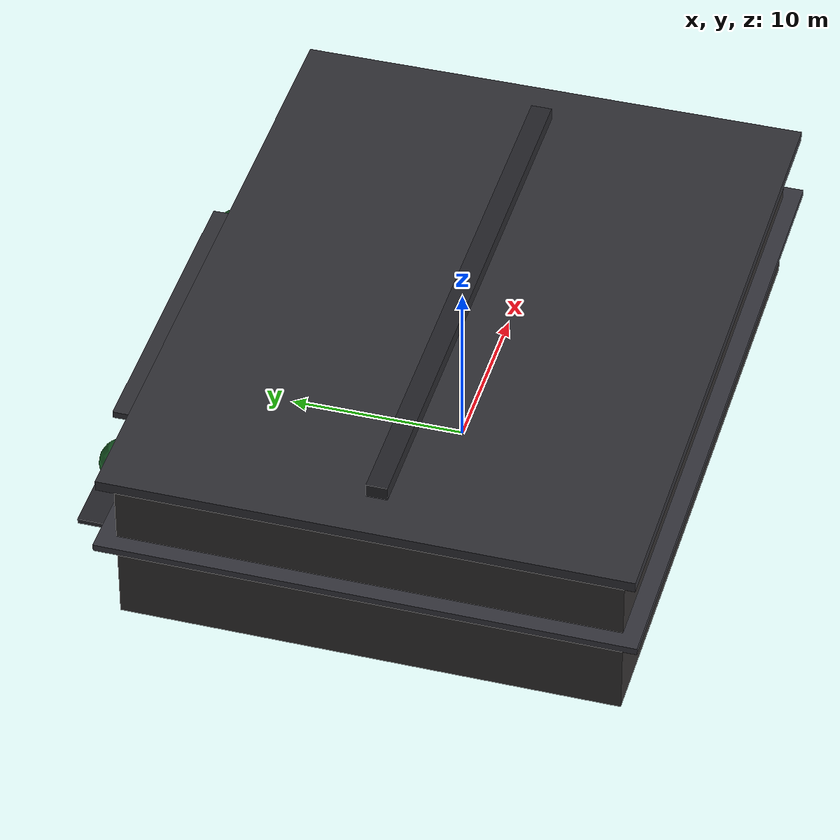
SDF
<?xml version="1.0" ?>
<sdf version="1.8">
  <model name="dingsheng_shili_restaurant">
    <static>true</static>
    <link name="restaurant_link">

      <!-- ==================== 物理碰撞剛體 (Decoupled Primitives) ==================== -->
      <!-- 主量體剛體 (38m x 28m x 9.0m) -->
      <collision name="main_body_col">
        <pose>0 0 4.5 0 0 0</pose>
        <geometry><box><size>38.0 28.0 9.0</size></box></geometry>
      </collision>
      <!-- 前方迎賓玄關雨遮剛體 -->
      <collision name="porch_col">
        <pose>0 15.5 2.5 0 0 0</pose>
        <geometry><box><size>18.0 3.5 5.0</size></box></geometry>
      </collision>
      <!-- 景觀水池台基剛體 (防車輛掉入) -->
      <collision name="pond_curb_col">
        <pose>0 16.0 0.25 0 0 0</pose>
        <geometry><box><size>28.0 4.5 0.5</size></box></geometry>
      </collision>

      <!-- ==================== 建築主體：碳化黑木 (Shou Sugi Ban) 外牆與日式格柵 ==================== -->
      <visual name="main_walls">
        <pose>0 0 4.5 0 0 0</pose>
        <geometry><box><size>38.0 28.0 9.0</size></box></geometry>
        <material>
          <ambient>0.15 0.14 0.14 1</ambient>
          <diffuse>0.20 0.19 0.19 1</diffuse>
        </material>
      </visual>

      <!-- 2樓水平木紋格柵外飾 (Horizontal Cedar Louvers) -->
      <visual name="wood_louvers_front">
        <pose>0 14.1 6.8 0 0 0</pose>
        <geometry><box><size>36.0 0.15 3.6</size></box></geometry>
        <material>
          <ambient>0.42 0.28 0.16 1</ambient>
          <diffuse>0.52 0.35 0.20 1</diffuse>
        </material>
      </visual>

      <!-- ==================== 日式黑瓦出簷與斜坡歇山屋頂 (Hip Roof with Eaves) ==================== -->
      <!-- 一樓出簷 (Lower Eave: 40m x 30m) -->
      <visual name="lower_eave">
        <pose>0 0 5.2 0 0 0</pose>
        <geometry><box><size>40.0 30.0 0.4</size></box></geometry>
        <material><ambient>0.18 0.18 0.20 1</ambient><diffuse>0.22 0.22 0.25 1</diffuse></material>
      </visual>
      <!-- 頂部黑瓦大斜坡屋頂主體 (Upper Roof) -->
      <visual name="upper_roof">
        <pose>0 0 9.5 0 0 0</pose>
        <geometry><box><size>39.5 29.5 0.6</size></box></geometry>
        <material><ambient>0.16 0.16 0.18 1</ambient><diffuse>0.20 0.20 0.22 1</diffuse></material>
      </visual>
      <!-- 歇山斜頂冠頂裝飾 (Roof Ridge Crest) -->
      <visual name="roof_ridge">
        <pose>0 0 10.2 0 0 0</pose>
        <geometry><box><size>34.0 1.2 0.8</size></box></geometry>
        <material><ambient>0.12 0.12 0.14 1</ambient><diffuse>0.15 0.15 0.17 1</diffuse></material>
      </visual>

      <!-- ==================== 挑高迎賓大門與黑木柱樑 (Grand Entrance Portico) ==================== -->
      <!-- 挑高大門深凹玄關牆 (Recessed Entrance Alcove) -->
      <visual name="porch_alcove">
        <pose>0 13.5 2.5 0 0 0</pose>
        <geometry><box><size>16.0 1.2 5.0</size></box></geometry>
        <material><ambient>0.10 0.10 0.10 1</ambient><diffuse>0.12 0.12 0.12 1</diffuse></material>
      </visual>
      <!-- 迎賓挑高大門雨遮深瓦 (Portico Eave Roof) -->
      <visual name="porch_roof">
        <pose>0 15.6 5.0 0 0 0</pose>
        <geometry><box><size>18.4 3.8 0.4</size></box></geometry>
        <material><ambient>0.16 0.16 0.18 1</ambient><diffuse>0.20 0.20 0.22 1</diffuse></material>
      </visual>
      <!-- 實木大門橫樑 (Grand Timber Beam) -->
      <visual name="porch_beam">
        <pose>0 15.2 4.6 0 0 0</pose>
        <geometry><box><size>17.6 0.5 0.6</size></box></geometry>
        <material><ambient>0.28 0.18 0.10 1</ambient><diffuse>0.35 0.22 0.12 1</diffuse></material>
      </visual>
      <!-- 兩側實木支承重柱 (Timber Columns) -->
      <visual name="porch_pillar_l"><pose>-8.2 15.2 2.3 0 0 0</pose><geometry><box><size>0.6 0.6 4.6</size></box></geometry><material><ambient>0.28 0.18 0.10 1</ambient><diffuse>0.35 0.22 0.12 1</diffuse></material></visual>
      <visual name="porch_pillar_r"><pose>8.2 15.2 2.3 0 0 0</pose><geometry><box><size>0.6 0.6 4.6</size></box></geometry><material><ambient>0.28 0.18 0.10 1</ambient><diffuse>0.35 0.22 0.12 1</diffuse></material></visual>

      <!-- ==================== 大型發光和風紅黑燈籠光雕 (Japanese Zen Lanterns) ==================== -->
      <!-- 左右兩座大型特色懸掛紙燈籠 (Emissive Amber Lanterns: "鼎盛十里") -->
      <visual name="lantern_l">
        <pose>-4.5 15.1 3.2 0 0 0</pose>
        <geometry><cylinder><radius>0.65</radius><length>1.8</length></cylinder></geometry>
        <material>
          <ambient>0.95 0.70 0.15 1</ambient>
          <diffuse>0.98 0.75 0.20 1</diffuse>
          <emissive>0.85 0.55 0.15 1</emissive>
        </material>
      </visual>
      <visual name="lantern_l_cap">
        <pose>-4.5 15.1 4.2 0 0 0</pose>
        <geometry><cylinder><radius>0.72</radius><length>0.2</length></cylinder></geometry>
        <material><ambient>0.1 0.1 0.1 1</ambient><diffuse>0.15 0.15 0.15 1</diffuse></material>
      </visual>
      <visual name="lantern_r">
        <pose>4.5 15.1 3.2 0 0 0</pose>
        <geometry><cylinder><radius>0.65</radius><length>1.8</length></cylinder></geometry>
        <material>
          <ambient>0.95 0.70 0.15 1</ambient>
          <diffuse>0.98 0.75 0.20 1</diffuse>
          <emissive>0.85 0.55 0.15 1</emissive>
        </material>
      </visual>
      <visual name="lantern_r_cap">
        <pose>4.5 15.1 4.2 0 0 0</pose>
        <geometry><cylinder><radius>0.72</radius><length>0.2</length></cylinder></geometry>
        <material><ambient>0.1 0.1 0.1 1</ambient><diffuse>0.15 0.15 0.15 1</diffuse></material>
      </visual>

      <!-- 鼎盛十里黃金立體書法招牌 (Golden Signboard) -->
      <visual name="signboard_gold">
        <pose>0 15.25 4.3 0 0 0</pose>
        <geometry><box><size>5.2 0.08 0.9</size></box></geometry>
        <material>
          <ambient>0.85 0.70 0.15 1</ambient>
          <diffuse>0.95 0.80 0.18 1</diffuse>
          <emissive>0.6 0.45 0.1 1</emissive>
        </material>
      </visual>

      <!-- ==================== 景觀鏡面水池與花崗石步道 (Zen Reflective Pool & Stepping Stones) ==================== -->
      <!-- 黑色石材水池池體 (Pool Basin: 26m x 4.0m) -->
      <visual name="pool_basin">
        <pose>0 16.5 0.15 0 0 0</pose>
        <geometry><box><size>26.0 4.0 0.3</size></box></geometry>
        <material><ambient>0.12 0.12 0.13 1</ambient><diffuse>0.16 0.16 0.18 1</diffuse></material>
      </visual>
      <!-- 平靜倒影鏡面水層 (Mirror Water Surface) -->
      <visual name="water_surface">
        <pose>0 16.5 0.28 0 0 0</pose>
        <geometry><box><size>25.4 3.6 0.02</size></box></geometry>
        <material>
          <ambient>0.15 0.25 0.32 0.9</ambient>
          <diffuse>0.20 0.35 0.45 0.9</diffuse>
        </material>
      </visual>
      <!-- 中央花崗石跨水迎賓步道 (Granite Stepping Bridge) -->
      <visual name="granite_bridge">
        <pose>0 16.5 0.32 0 0 0</pose>
        <geometry><box><size>4.5 4.2 0.08</size></box></geometry>
        <material><ambient>0.65 0.65 0.68 1</ambient><diffuse>0.72 0.72 0.75 1</diffuse></material>
      </visual>

      <!-- ==================== 庭園日式黑松與石雕造景 (Black Pines & Stone Lanterns) ==================== -->
      <visual name="pine_trunk_l"><pose>-10.5 16.5 1.5 0.1 0.1 0</pose><geometry><cylinder><radius>0.18</radius><length>2.8</length></cylinder></geometry><material><ambient>0.3 0.22 0.16 1</ambient><diffuse>0.38 0.28 0.20 1</diffuse></material></visual>
      <visual name="pine_foliage_l1"><pose>-10.5 16.5 2.8 0 0 0</pose><geometry><sphere><radius>1.4</radius></sphere></geometry><material><ambient>0.10 0.35 0.15 1</ambient><diffuse>0.12 0.42 0.18 1</diffuse></material></visual>
      <visual name="pine_foliage_l2"><pose>-9.6 16.2 3.4 0 0 0</pose><geometry><sphere><radius>1.0</radius></sphere></geometry><material><ambient>0.10 0.35 0.15 1</ambient><diffuse>0.12 0.42 0.18 1</diffuse></material></visual>

      <visual name="pine_trunk_r"><pose>10.5 16.5 1.5 -0.1 0.1 0</pose><geometry><cylinder><radius>0.18</radius><length>2.8</length></cylinder></geometry><material><ambient>0.3 0.22 0.16 1</ambient><diffuse>0.38 0.28 0.20 1</diffuse></material></visual>
      <visual name="pine_foliage_r1"><pose>10.5 16.5 2.8 0 0 0</pose><geometry><sphere><radius>1.4</radius></sphere></geometry><material><ambient>0.10 0.35 0.15 1</ambient><diffuse>0.12 0.42 0.18 1</diffuse></material></visual>
      <visual name="pine_foliage_r2"><pose>9.6 16.2 3.4 0 0 0</pose><geometry><sphere><radius>1.0</radius></sphere></geometry><material><ambient>0.10 0.35 0.15 1</ambient><diffuse>0.12 0.42 0.18 1</diffuse></material></visual>
    </link>
  </model>
</sdf>
